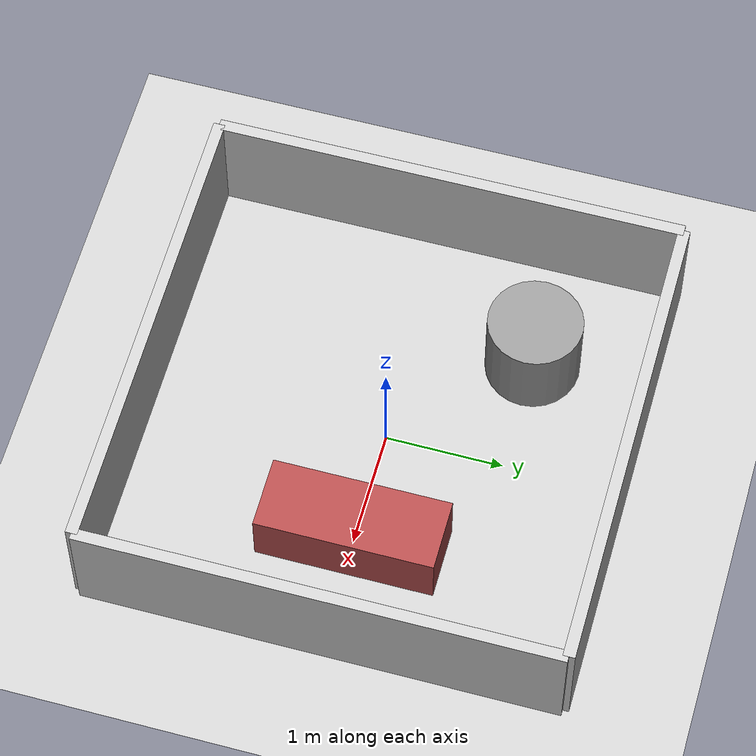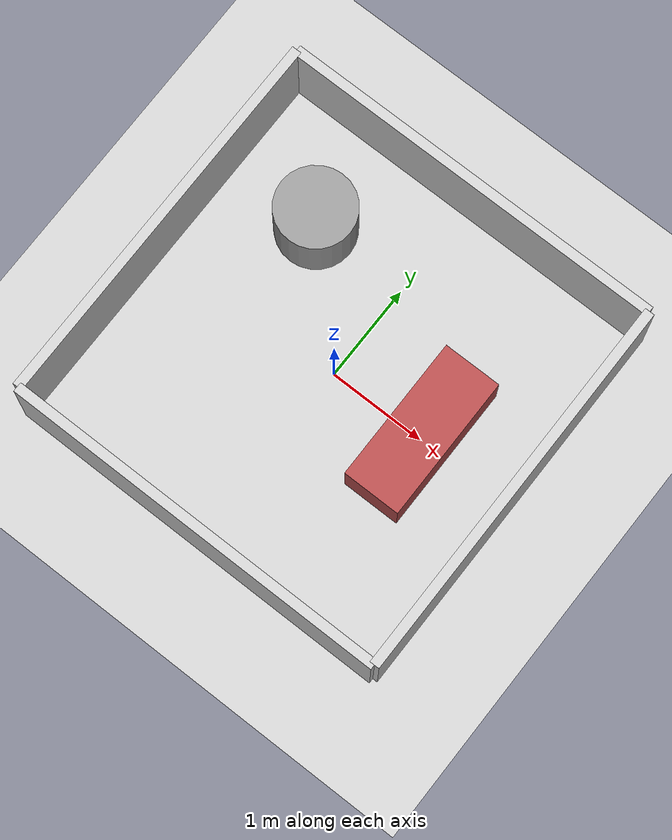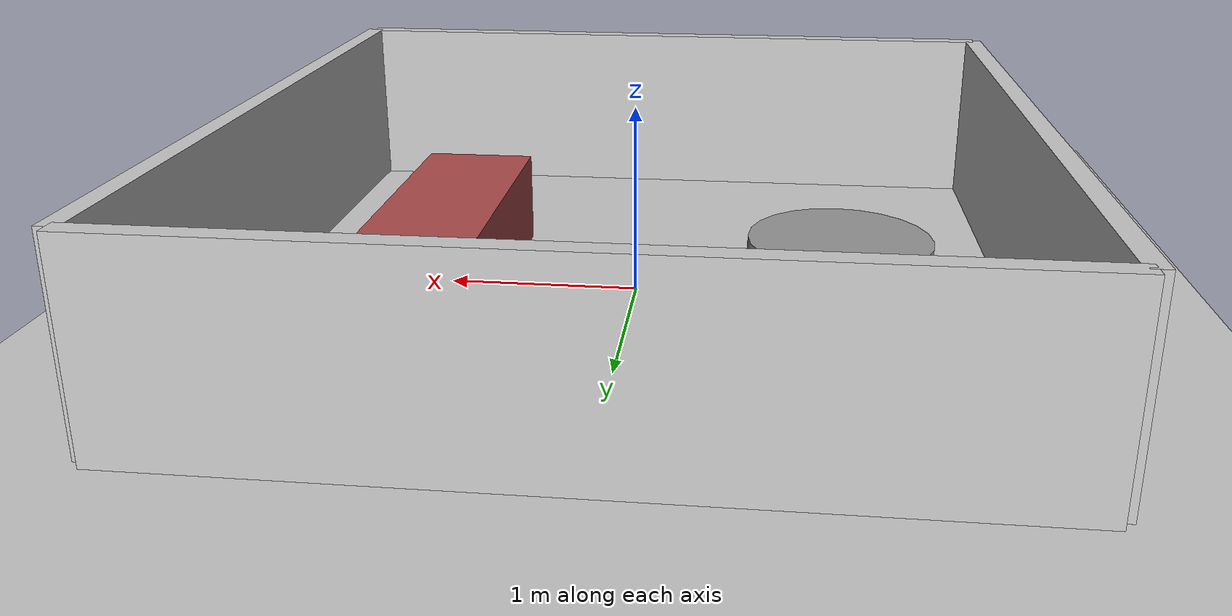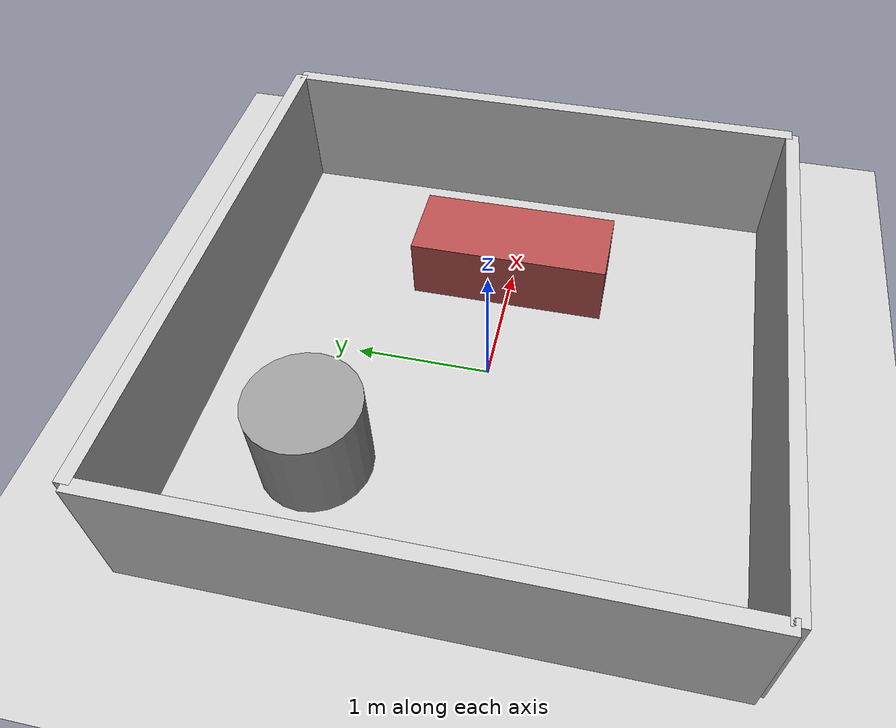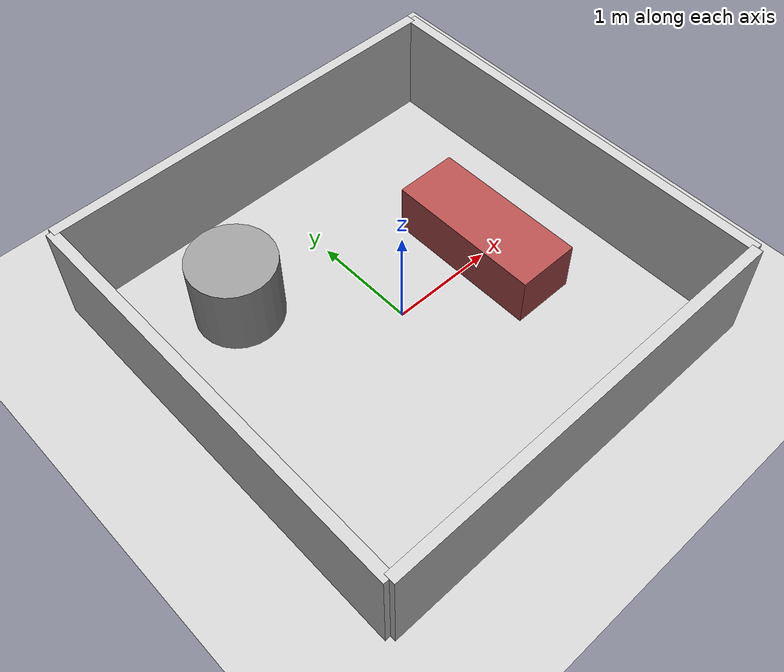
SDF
<?xml version="1.0" ?>

<sdf version="1.6">
  <world name="room">
    <physics name="1ms" type="ignored">
      <max_step_size>0.001</max_step_size>
      <real_time_factor>1.0</real_time_factor>
    </physics>
    <plugin
      filename="gz-sim-physics-system"
      name="gz::sim::systems::Physics">
    </plugin>
    <plugin
      filename="gz-sim-user-commands-system"
      name="gz::sim::systems::UserCommands">
    </plugin>
    <plugin
      filename="gz-sim-scene-broadcaster-system"
      name="gz::sim::systems::SceneBroadcaster">
    </plugin>
    <plugin
      filename="gz-sim-contact-system"
      name="gz::sim::systems::Contact">
    </plugin>

    <plugin
      filename="gz-sim-sensors-system"
      name="gz::sim::systems::Sensors">
      <render_engine>ogre2</render_engine>
    </plugin>
    <plugin
      filename="gz-sim-imu-system"
      name="gz::sim::systems::Imu">
    </plugin>

    <light type="directional" name="sun">
      <cast_shadows>true</cast_shadows>
      <pose>0 0 10 0 0 0</pose>
      <diffuse>0.8 0.8 0.8 1</diffuse>
      <specular>0.2 0.2 0.2 1</specular>
      <attenuation>
        <range>1000</range>
        <constant>0.9</constant>
        <linear>0.01</linear>
        <quadratic>0.001</quadratic>
      </attenuation>
      <direction>-0.5 0.1 -0.9</direction>
    </light>

    <gravity>0 0 -9.8000000000000007</gravity>
    <magnetic_field>5.5644999999999998e-06 2.2875799999999999e-05 -4.2388400000000002e-05</magnetic_field>
    <atmosphere type='adiabatic'/>
    <scene>
      <ambient>0.400000006 0.400000006 0.400000006 1</ambient>
      <background>0.699999988 0.699999988 0.699999988 1</background>
      <shadows>true</shadows>
    </scene>

    <model name="ground_plane">
      <static>true</static>
      <link name="link">
        <collision name="collision">
          <geometry>
            <plane>
              <normal>0 0 1</normal>
              <size>100 100</size>
            </plane>
          </geometry>
          <surface>
            <friction>
              <ode>
                <mu>50</mu>
              </ode>
            </friction>
            <bounce/>
            <contact/>
          </surface>
        </collision>
        <visual name="visual">
          <geometry>
            <plane>
              <normal>0 0 1</normal>
              <size>100 100</size>
            </plane>
          </geometry>
          <material>
            <ambient>0.8 0.8 0.8 1</ambient>
            <diffuse>0.8 0.8 0.8 1</diffuse>
            <specular>0.8 0.8 0.8 1</specular>
          </material>
        </visual>
      </link>
    </model>

    <model name="sofa_box">
      <pose>1 0 0.25 0 0 1.5708</pose>
      <static>true</static>
      <link name="link">
        <collision name="collision">
          <geometry>
            <box>
              <size>1.5 0.6 0.5</size>
            </box>
          </geometry>
        </collision>
        <visual name="visual">
          <geometry>
            <box>
              <size>1.5 0.6 0.5</size>
            </box>
          </geometry>
          <material>
            <ambient>0.5 0.2 0.2 1</ambient>
            <diffuse>0.7 0.3 0.3 1</diffuse>
          </material>
        </visual>
      </link>
    </model>

    <model name="table_cylinder">
      <pose>-1 1 0.35 0 0 0</pose>
      <static>true</static>
      <link name="link">
        <collision name="collision">
          <geometry>
            <cylinder>
              <radius>0.4</radius>
              <length>0.7</length>
            </cylinder>
          </geometry>
        </collision>
        <visual name="visual">
          <geometry>
            <cylinder>
              <radius>0.4</radius>
              <length>0.7</length>
            </cylinder>
          </geometry>
          <material>
            <ambient>0.4 0.4 0.4 1</ambient>
            <diffuse>0.6 0.6 0.6 1</diffuse>
          </material>
        </visual>
      </link>
    </model>

    <model name="wall_south">
      <pose>0 -2 0.5 0 0 0</pose>
      <static>true</static>
      <link name="link">
        <collision name="collision">
          <geometry>
            <box>
              <size>4 0.1 1</size>
            </box>
          </geometry>
        </collision>
        <visual name="visual">
          <geometry>
            <box>
              <size>4 0.1 1</size>
            </box>
          </geometry>
          <material>
            <ambient>0.7 0.7 0.7 1</ambient>
            <diffuse>0.8 0.8 0.8 1</diffuse>
          </material>
        </visual>
      </link>
    </model>

    <model name="wall_north">
      <pose>0 2 0.5 0 0 0</pose>
      <static>true</static>
      <link name="link">
        <collision name="collision">
          <geometry>
            <box>
              <size>4 0.1 1</size>
            </box>
          </geometry>
        </collision>
        <visual name="visual">
          <geometry>
            <box>
              <size>4 0.1 1</size>
            </box>
          </geometry>
          <material>
            <ambient>0.7 0.7 0.7 1</ambient>
            <diffuse>0.8 0.8 0.8 1</diffuse>
          </material>
        </visual>
      </link>
    </model>

    <model name="wall_east">
      <pose>2 0 0.5 0 0 1.5708</pose>
      <static>true</static>
      <link name="link">
        <collision name="collision">
          <geometry>
            <box>
              <size>4 0.1 1</size>
            </box>
          </geometry>
        </collision>
        <visual name="visual">
          <geometry>
            <box>
              <size>4 0.1 1</size>
            </box>
          </geometry>
          <material>
            <ambient>0.7 0.7 0.7 1</ambient>
            <diffuse>0.8 0.8 0.8 1</diffuse>
          </material>
        </visual>
      </link>
    </model>

    <model name="wall_west">
      <pose>-2 0 0.5 0 0 1.5708</pose>
      <static>true</static>
      <link name="link">
        <collision name="collision">
          <geometry>
            <box>
              <size>4 0.1 1</size>
            </box>
          </geometry>
        </collision>
        <visual name="visual">
          <geometry>
            <box>
              <size>4 0.1 1</size>
            </box>
          </geometry>
          <material>
            <ambient>0.7 0.7 0.7 1</ambient>
            <diffuse>0.8 0.8 0.8 1</diffuse>
          </material>
        </visual>
      </link>
    </model>

  </world>
</sdf>
